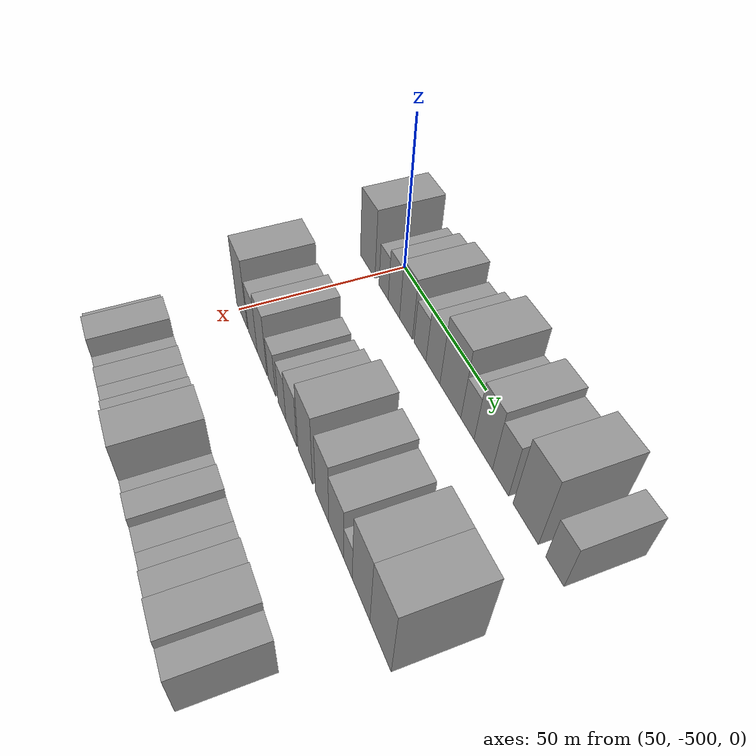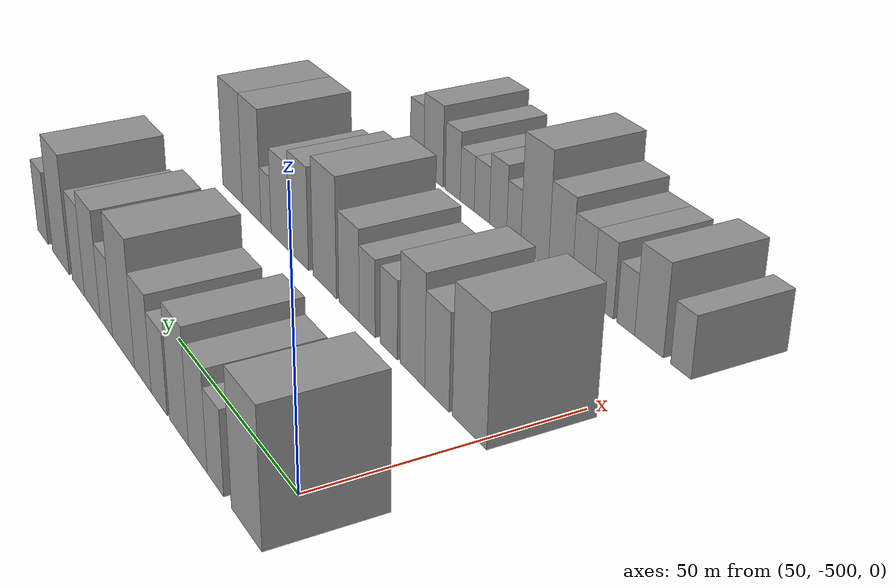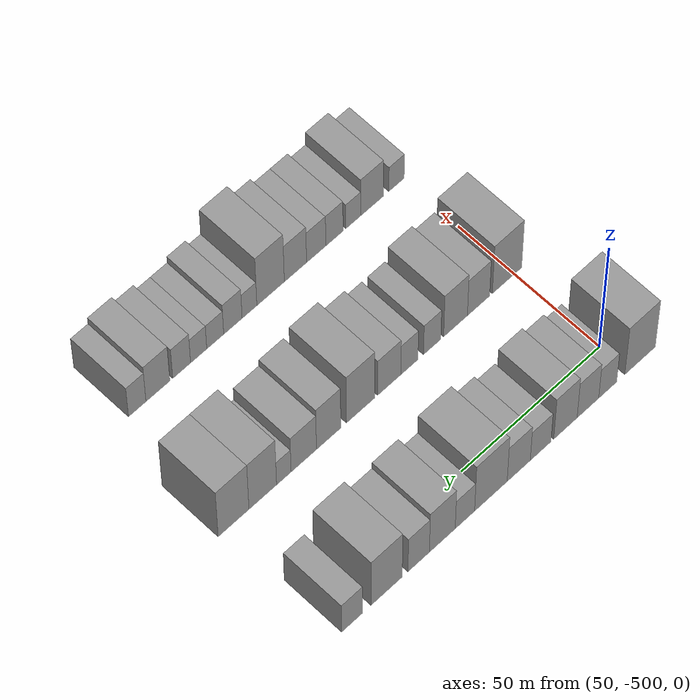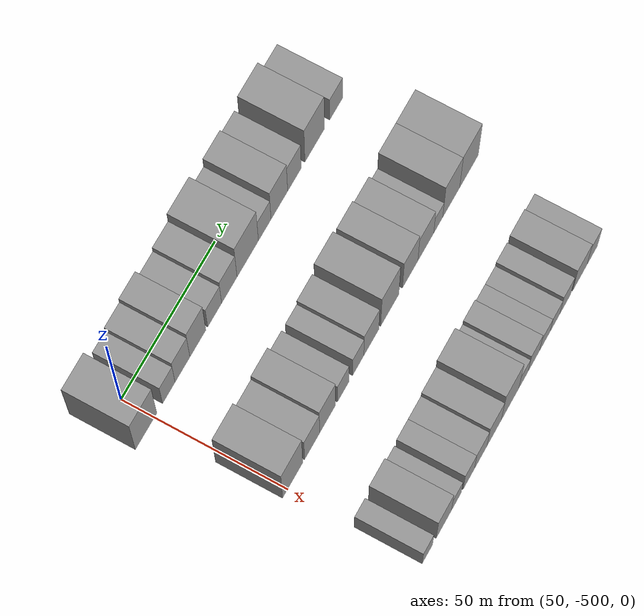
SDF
<sdf version="1.6">
 <world name="default">
  <model name="building_12">
   <static>1</static>
   <pose>50.0000 -504.3334 0 0.000000 0.000000 0.000000</pose>
   <link name="link">
    <pose>0 0 12.00 0 0 0</pose>
    <collision name="collision"><geometry><box><size>20.0000 11.2239 24.0000</size></box></geometry></collision>
    <visual name="visual">
     <cast_shadows>0</cast_shadows>
     <geometry><box><size>20.0000 11.2239 24.0000</size></box></geometry>
     <material>
      <script>
       <uri>model://grey_wall/materials/scripts</uri>
       <uri>model://grey_wall/materials/textures</uri>
       <name>vrc/grey_wall</name>
      </script>
     </material>
    </visual>
   </link>
  </model>
  <model name="building_13">
   <static>1</static>
   <pose>50.0000 -492.4218 0 0.000000 0.000000 0.000000</pose>
   <link name="link">
    <pose>0 0 7.50 0 0 0</pose>
    <collision name="collision"><geometry><box><size>20.0000 6.5992 15.0000</size></box></geometry></collision>
    <visual name="visual">
     <cast_shadows>0</cast_shadows>
     <geometry><box><size>20.0000 6.5992 15.0000</size></box></geometry>
     <material>
      <script>
       <uri>model://grey_wall/materials/scripts</uri>
       <uri>model://grey_wall/materials/textures</uri>
       <name>vrc/grey_wall</name>
      </script>
     </material>
    </visual>
   </link>
  </model>
  <model name="building_14">
   <static>1</static>
   <pose>50.0000 -485.1858 0 0.000000 0.000000 0.000000</pose>
   <link name="link">
    <pose>0 0 9.00 0 0 0</pose>
    <collision name="collision"><geometry><box><size>20.0000 7.8728 18.0000</size></box></geometry></collision>
    <visual name="visual">
     <cast_shadows>0</cast_shadows>
     <geometry><box><size>20.0000 7.8728 18.0000</size></box></geometry>
     <material>
      <script>
       <uri>model://grey_wall/materials/scripts</uri>
       <uri>model://grey_wall/materials/textures</uri>
       <name>vrc/grey_wall</name>
      </script>
     </material>
    </visual>
   </link>
  </model>
  <model name="building_15">
   <static>1</static>
   <pose>50.0000 -477.0049 0 0.000000 0.000000 0.000000</pose>
   <link name="link">
    <pose>0 0 10.50 0 0 0</pose>
    <collision name="collision"><geometry><box><size>20.0000 8.4891 21.0000</size></box></geometry></collision>
    <visual name="visual">
     <cast_shadows>0</cast_shadows>
     <geometry><box><size>20.0000 8.4891 21.0000</size></box></geometry>
     <material>
      <script>
       <uri>model://grey_wall/materials/scripts</uri>
       <uri>model://grey_wall/materials/textures</uri>
       <name>vrc/grey_wall</name>
      </script>
     </material>
    </visual>
   </link>
  </model>
  <model name="building_16">
   <static>1</static>
   <pose>50.0000 -468.0218 0 0.000000 0.000000 0.000000</pose>
   <link name="link">
    <pose>0 0 7.50 0 0 0</pose>
    <collision name="collision"><geometry><box><size>20.0000 7.4771 15.0000</size></box></geometry></collision>
    <visual name="visual">
     <cast_shadows>0</cast_shadows>
     <geometry><box><size>20.0000 7.4771 15.0000</size></box></geometry>
     <material>
      <script>
       <uri>model://grey_wall/materials/scripts</uri>
       <uri>model://grey_wall/materials/textures</uri>
       <name>vrc/grey_wall</name>
      </script>
     </material>
    </visual>
   </link>
  </model>
  <model name="building_17">
   <static>1</static>
   <pose>50.0000 -460.1328 0 0.000000 0.000000 0.000000</pose>
   <link name="link">
    <pose>0 0 9.00 0 0 0</pose>
    <collision name="collision"><geometry><box><size>20.0000 8.3009 18.0000</size></box></geometry></collision>
    <visual name="visual">
     <cast_shadows>0</cast_shadows>
     <geometry><box><size>20.0000 8.3009 18.0000</size></box></geometry>
     <material>
      <script>
       <uri>model://grey_wall/materials/scripts</uri>
       <uri>model://grey_wall/materials/textures</uri>
       <name>vrc/grey_wall</name>
      </script>
     </material>
    </visual>
   </link>
  </model>
  <model name="building_18">
   <static>1</static>
   <pose>50.0000 -450.1696 0 0.000000 0.000000 0.000000</pose>
   <link name="link">
    <pose>0 0 12.00 0 0 0</pose>
    <collision name="collision"><geometry><box><size>20.0000 11.6257 24.0000</size></box></geometry></collision>
    <visual name="visual">
     <cast_shadows>0</cast_shadows>
     <geometry><box><size>20.0000 11.6257 24.0000</size></box></geometry>
     <material>
      <script>
       <uri>model://grey_wall/materials/scripts</uri>
       <uri>model://grey_wall/materials/textures</uri>
       <name>vrc/grey_wall</name>
      </script>
     </material>
    </visual>
   </link>
  </model>
  <model name="building_19">
   <static>1</static>
   <pose>50.0000 -440.9127 0 0.000000 0.000000 0.000000</pose>
   <link name="link">
    <pose>0 0 7.50 0 0 0</pose>
    <collision name="collision"><geometry><box><size>20.0000 6.8882 15.0000</size></box></geometry></collision>
    <visual name="visual">
     <cast_shadows>0</cast_shadows>
     <geometry><box><size>20.0000 6.8882 15.0000</size></box></geometry>
     <material>
      <script>
       <uri>model://grey_wall/materials/scripts</uri>
       <uri>model://grey_wall/materials/textures</uri>
       <name>vrc/grey_wall</name>
      </script>
     </material>
    </visual>
   </link>
  </model>
  <model name="building_20">
   <static>1</static>
   <pose>50.0000 -432.9090 0 0.000000 0.000000 0.000000</pose>
   <link name="link">
    <pose>0 0 10.50 0 0 0</pose>
    <collision name="collision"><geometry><box><size>20.0000 9.1191 21.0000</size></box></geometry></collision>
    <visual name="visual">
     <cast_shadows>0</cast_shadows>
     <geometry><box><size>20.0000 9.1191 21.0000</size></box></geometry>
     <material>
      <script>
       <uri>model://grey_wall/materials/scripts</uri>
       <uri>model://grey_wall/materials/textures</uri>
       <name>vrc/grey_wall</name>
      </script>
     </material>
    </visual>
   </link>
  </model>
  <model name="building_21">
   <static>1</static>
   <pose>50.0000 -424.5883 0 0.000000 0.000000 0.000000</pose>
   <link name="link">
    <pose>0 0 9.00 0 0 0</pose>
    <collision name="collision"><geometry><box><size>20.0000 7.5224 18.0000</size></box></geometry></collision>
    <visual name="visual">
     <cast_shadows>0</cast_shadows>
     <geometry><box><size>20.0000 7.5224 18.0000</size></box></geometry>
     <material>
      <script>
       <uri>model://grey_wall/materials/scripts</uri>
       <uri>model://grey_wall/materials/textures</uri>
       <name>vrc/grey_wall</name>
      </script>
     </material>
    </visual>
   </link>
  </model>
  <model name="building_22">
   <static>1</static>
   <pose>50.0000 -413.3890 0 0.000000 0.000000 0.000000</pose>
   <link name="link">
    <pose>0 0 12.00 0 0 0</pose>
    <collision name="collision"><geometry><box><size>20.0000 10.8761 24.0000</size></box></geometry></collision>
    <visual name="visual">
     <cast_shadows>0</cast_shadows>
     <geometry><box><size>20.0000 10.8761 24.0000</size></box></geometry>
     <material>
      <script>
       <uri>model://grey_wall/materials/scripts</uri>
       <uri>model://grey_wall/materials/textures</uri>
       <name>vrc/grey_wall</name>
      </script>
     </material>
    </visual>
   </link>
  </model>
  <model name="building_23">
   <static>1</static>
   <pose>50.0000 -401.3649 0 0.000000 0.000000 0.000000</pose>
   <link name="link">
    <pose>0 0 7.50 0 0 0</pose>
    <collision name="collision"><geometry><box><size>20.0000 7.1721 15.0000</size></box></geometry></collision>
    <visual name="visual">
     <cast_shadows>0</cast_shadows>
     <geometry><box><size>20.0000 7.1721 15.0000</size></box></geometry>
     <material>
      <script>
       <uri>model://grey_wall/materials/scripts</uri>
       <uri>model://grey_wall/materials/textures</uri>
       <name>vrc/grey_wall</name>
      </script>
     </material>
    </visual>
   </link>
  </model>
  <model name="building_151">
   <static>1</static>
   <pose>90.0000 -497.3158 0 0.000000 0.000000 0.000000</pose>
   <link name="link">
    <pose>0 0 12.00 0 0 0</pose>
    <collision name="collision"><geometry><box><size>20.0000 10.7537 24.0000</size></box></geometry></collision>
    <visual name="visual">
     <cast_shadows>0</cast_shadows>
     <geometry><box><size>20.0000 10.7537 24.0000</size></box></geometry>
     <material>
      <script>
       <uri>model://grey_wall/materials/scripts</uri>
       <uri>model://grey_wall/materials/textures</uri>
       <name>vrc/grey_wall</name>
      </script>
     </material>
    </visual>
   </link>
  </model>
  <model name="building_152">
   <static>1</static>
   <pose>90.0000 -486.8825 0 0.000000 0.000000 0.000000</pose>
   <link name="link">
    <pose>0 0 9.00 0 0 0</pose>
    <collision name="collision"><geometry><box><size>20.0000 8.1130 18.0000</size></box></geometry></collision>
    <visual name="visual">
     <cast_shadows>0</cast_shadows>
     <geometry><box><size>20.0000 8.1130 18.0000</size></box></geometry>
     <material>
      <script>
       <uri>model://grey_wall/materials/scripts</uri>
       <uri>model://grey_wall/materials/textures</uri>
       <name>vrc/grey_wall</name>
      </script>
     </material>
    </visual>
   </link>
  </model>
  <model name="building_153">
   <static>1</static>
   <pose>90.0000 -478.5081 0 0.000000 0.000000 0.000000</pose>
   <link name="link">
    <pose>0 0 10.50 0 0 0</pose>
    <collision name="collision"><geometry><box><size>20.0000 8.6357 21.0000</size></box></geometry></collision>
    <visual name="visual">
     <cast_shadows>0</cast_shadows>
     <geometry><box><size>20.0000 8.6357 21.0000</size></box></geometry>
     <material>
      <script>
       <uri>model://grey_wall/materials/scripts</uri>
       <uri>model://grey_wall/materials/textures</uri>
       <name>vrc/grey_wall</name>
      </script>
     </material>
    </visual>
   </link>
  </model>
  <model name="building_154">
   <static>1</static>
   <pose>90.0000 -470.0539 0 0.000000 0.000000 0.000000</pose>
   <link name="link">
    <pose>0 0 7.50 0 0 0</pose>
    <collision name="collision"><geometry><box><size>20.0000 6.2727 15.0000</size></box></geometry></collision>
    <visual name="visual">
     <cast_shadows>0</cast_shadows>
     <geometry><box><size>20.0000 6.2727 15.0000</size></box></geometry>
     <material>
      <script>
       <uri>model://grey_wall/materials/scripts</uri>
       <uri>model://grey_wall/materials/textures</uri>
       <name>vrc/grey_wall</name>
      </script>
     </material>
    </visual>
   </link>
  </model>
  <model name="building_155">
   <static>1</static>
   <pose>90.0000 -461.8418 0 0.000000 0.000000 0.000000</pose>
   <link name="link">
    <pose>0 0 7.50 0 0 0</pose>
    <collision name="collision"><geometry><box><size>20.0000 6.1516 15.0000</size></box></geometry></collision>
    <visual name="visual">
     <cast_shadows>0</cast_shadows>
     <geometry><box><size>20.0000 6.1516 15.0000</size></box></geometry>
     <material>
      <script>
       <uri>model://grey_wall/materials/scripts</uri>
       <uri>model://grey_wall/materials/textures</uri>
       <name>vrc/grey_wall</name>
      </script>
     </material>
    </visual>
   </link>
  </model>
  <model name="building_156">
   <static>1</static>
   <pose>90.0000 -454.6146 0 0.000000 0.000000 0.000000</pose>
   <link name="link">
    <pose>0 0 9.00 0 0 0</pose>
    <collision name="collision"><geometry><box><size>20.0000 8.3029 18.0000</size></box></geometry></collision>
    <visual name="visual">
     <cast_shadows>0</cast_shadows>
     <geometry><box><size>20.0000 8.3029 18.0000</size></box></geometry>
     <material>
      <script>
       <uri>model://grey_wall/materials/scripts</uri>
       <uri>model://grey_wall/materials/textures</uri>
       <name>vrc/grey_wall</name>
      </script>
     </material>
    </visual>
   </link>
  </model>
  <model name="building_157">
   <static>1</static>
   <pose>90.0000 -444.4185 0 0.000000 0.000000 0.000000</pose>
   <link name="link">
    <pose>0 0 12.00 0 0 0</pose>
    <collision name="collision"><geometry><box><size>20.0000 10.0892 24.0000</size></box></geometry></collision>
    <visual name="visual">
     <cast_shadows>0</cast_shadows>
     <geometry><box><size>20.0000 10.0892 24.0000</size></box></geometry>
     <material>
      <script>
       <uri>model://grey_wall/materials/scripts</uri>
       <uri>model://grey_wall/materials/textures</uri>
       <name>vrc/grey_wall</name>
      </script>
     </material>
    </visual>
   </link>
  </model>
  <model name="building_158">
   <static>1</static>
   <pose>90.0000 -433.0668 0 0.000000 0.000000 0.000000</pose>
   <link name="link">
    <pose>0 0 10.50 0 0 0</pose>
    <collision name="collision"><geometry><box><size>20.0000 8.6144 21.0000</size></box></geometry></collision>
    <visual name="visual">
     <cast_shadows>0</cast_shadows>
     <geometry><box><size>20.0000 8.6144 21.0000</size></box></geometry>
     <material>
      <script>
       <uri>model://grey_wall/materials/scripts</uri>
       <uri>model://grey_wall/materials/textures</uri>
       <name>vrc/grey_wall</name>
      </script>
     </material>
    </visual>
   </link>
  </model>
  <model name="building_159">
   <static>1</static>
   <pose>90.0000 -424.3049 0 0.000000 0.000000 0.000000</pose>
   <link name="link">
    <pose>0 0 9.00 0 0 0</pose>
    <collision name="collision"><geometry><box><size>20.0000 8.9094 18.0000</size></box></geometry></collision>
    <visual name="visual">
     <cast_shadows>0</cast_shadows>
     <geometry><box><size>20.0000 8.9094 18.0000</size></box></geometry>
     <material>
      <script>
       <uri>model://grey_wall/materials/scripts</uri>
       <uri>model://grey_wall/materials/textures</uri>
       <name>vrc/grey_wall</name>
      </script>
     </material>
    </visual>
   </link>
  </model>
  <model name="building_160">
   <static>1</static>
   <pose>90.0000 -417.3159 0 0.000000 0.000000 0.000000</pose>
   <link name="link">
    <pose>0 0 6.00 0 0 0</pose>
    <collision name="collision"><geometry><box><size>20.0000 5.0687 12.0000</size></box></geometry></collision>
    <visual name="visual">
     <cast_shadows>0</cast_shadows>
     <geometry><box><size>20.0000 5.0687 12.0000</size></box></geometry>
     <material>
      <script>
       <uri>model://grey_wall/materials/scripts</uri>
       <uri>model://grey_wall/materials/textures</uri>
       <name>vrc/grey_wall</name>
      </script>
     </material>
    </visual>
   </link>
  </model>
  <model name="building_161">
   <static>1</static>
   <pose>90.0000 -409.9759 0 0.000000 0.000000 0.000000</pose>
   <link name="link">
    <pose>0 0 12.00 0 0 0</pose>
    <collision name="collision"><geometry><box><size>20.0000 9.6112 24.0000</size></box></geometry></collision>
    <visual name="visual">
     <cast_shadows>0</cast_shadows>
     <geometry><box><size>20.0000 9.6112 24.0000</size></box></geometry>
     <material>
      <script>
       <uri>model://grey_wall/materials/scripts</uri>
       <uri>model://grey_wall/materials/textures</uri>
       <name>vrc/grey_wall</name>
      </script>
     </material>
    </visual>
   </link>
  </model>
  <model name="building_162">
   <static>1</static>
   <pose>90.0000 -399.8412 0 0.000000 0.000000 0.000000</pose>
   <link name="link">
    <pose>0 0 12.00 0 0 0</pose>
    <collision name="collision"><geometry><box><size>20.0000 10.6582 24.0000</size></box></geometry></collision>
    <visual name="visual">
     <cast_shadows>0</cast_shadows>
     <geometry><box><size>20.0000 10.6582 24.0000</size></box></geometry>
     <material>
      <script>
       <uri>model://grey_wall/materials/scripts</uri>
       <uri>model://grey_wall/materials/textures</uri>
       <name>vrc/grey_wall</name>
      </script>
     </material>
    </visual>
   </link>
  </model>
  <model name="building_284">
   <static>1</static>
   <pose>130.0000 -497.6023 0 0.000000 0.000000 0.000000</pose>
   <link name="link">
    <pose>0 0 6.00 0 0 0</pose>
    <collision name="collision"><geometry><box><size>20.0000 5.6237 12.0000</size></box></geometry></collision>
    <visual name="visual">
     <cast_shadows>0</cast_shadows>
     <geometry><box><size>20.0000 5.6237 12.0000</size></box></geometry>
     <material>
      <script>
       <uri>model://grey_wall/materials/scripts</uri>
       <uri>model://grey_wall/materials/textures</uri>
       <name>vrc/grey_wall</name>
      </script>
     </material>
    </visual>
   </link>
  </model>
  <model name="building_285">
   <static>1</static>
   <pose>130.0000 -488.6462 0 0.000000 0.000000 0.000000</pose>
   <link name="link">
    <pose>0 0 9.00 0 0 0</pose>
    <collision name="collision"><geometry><box><size>20.0000 8.2884 18.0000</size></box></geometry></collision>
    <visual name="visual">
     <cast_shadows>0</cast_shadows>
     <geometry><box><size>20.0000 8.2884 18.0000</size></box></geometry>
     <material>
      <script>
       <uri>model://grey_wall/materials/scripts</uri>
       <uri>model://grey_wall/materials/textures</uri>
       <name>vrc/grey_wall</name>
      </script>
     </material>
    </visual>
   </link>
  </model>
  <model name="building_286">
   <static>1</static>
   <pose>130.0000 -481.7968 0 0.000000 0.000000 0.000000</pose>
   <link name="link">
    <pose>0 0 6.00 0 0 0</pose>
    <collision name="collision"><geometry><box><size>20.0000 5.4103 12.0000</size></box></geometry></collision>
    <visual name="visual">
     <cast_shadows>0</cast_shadows>
     <geometry><box><size>20.0000 5.4103 12.0000</size></box></geometry>
     <material>
      <script>
       <uri>model://grey_wall/materials/scripts</uri>
       <uri>model://grey_wall/materials/textures</uri>
       <name>vrc/grey_wall</name>
      </script>
     </material>
    </visual>
   </link>
  </model>
  <model name="building_287">
   <static>1</static>
   <pose>130.0000 -474.9607 0 0.000000 0.000000 0.000000</pose>
   <link name="link">
    <pose>0 0 7.50 0 0 0</pose>
    <collision name="collision"><geometry><box><size>20.0000 6.2620 15.0000</size></box></geometry></collision>
    <visual name="visual">
     <cast_shadows>0</cast_shadows>
     <geometry><box><size>20.0000 6.2620 15.0000</size></box></geometry>
     <material>
      <script>
       <uri>model://grey_wall/materials/scripts</uri>
       <uri>model://grey_wall/materials/textures</uri>
       <name>vrc/grey_wall</name>
      </script>
     </material>
    </visual>
   </link>
  </model>
  <model name="building_288">
   <static>1</static>
   <pose>130.0000 -468.3507 0 0.000000 0.000000 0.000000</pose>
   <link name="link">
    <pose>0 0 7.50 0 0 0</pose>
    <collision name="collision"><geometry><box><size>20.0000 6.9579 15.0000</size></box></geometry></collision>
    <visual name="visual">
     <cast_shadows>0</cast_shadows>
     <geometry><box><size>20.0000 6.9579 15.0000</size></box></geometry>
     <material>
      <script>
       <uri>model://grey_wall/materials/scripts</uri>
       <uri>model://grey_wall/materials/textures</uri>
       <name>vrc/grey_wall</name>
      </script>
     </material>
    </visual>
   </link>
  </model>
  <model name="building_289">
   <static>1</static>
   <pose>130.0000 -460.8813 0 0.000000 0.000000 0.000000</pose>
   <link name="link">
    <pose>0 0 9.00 0 0 0</pose>
    <collision name="collision"><geometry><box><size>20.0000 7.9809 18.0000</size></box></geometry></collision>
    <visual name="visual">
     <cast_shadows>0</cast_shadows>
     <geometry><box><size>20.0000 7.9809 18.0000</size></box></geometry>
     <material>
      <script>
       <uri>model://grey_wall/materials/scripts</uri>
       <uri>model://grey_wall/materials/textures</uri>
       <name>vrc/grey_wall</name>
      </script>
     </material>
    </visual>
   </link>
  </model>
  <model name="building_290">
   <static>1</static>
   <pose>130.0000 -451.9796 0 0.000000 0.000000 0.000000</pose>
   <link name="link">
    <pose>0 0 12.00 0 0 0</pose>
    <collision name="collision"><geometry><box><size>20.0000 9.8225 24.0000</size></box></geometry></collision>
    <visual name="visual">
     <cast_shadows>0</cast_shadows>
     <geometry><box><size>20.0000 9.8225 24.0000</size></box></geometry>
     <material>
      <script>
       <uri>model://grey_wall/materials/scripts</uri>
       <uri>model://grey_wall/materials/textures</uri>
       <name>vrc/grey_wall</name>
      </script>
     </material>
    </visual>
   </link>
  </model>
  <model name="building_291">
   <static>1</static>
   <pose>130.0000 -444.4454 0 0.000000 0.000000 0.000000</pose>
   <link name="link">
    <pose>0 0 6.00 0 0 0</pose>
    <collision name="collision"><geometry><box><size>20.0000 5.2460 12.0000</size></box></geometry></collision>
    <visual name="visual">
     <cast_shadows>0</cast_shadows>
     <geometry><box><size>20.0000 5.2460 12.0000</size></box></geometry>
     <material>
      <script>
       <uri>model://grey_wall/materials/scripts</uri>
       <uri>model://grey_wall/materials/textures</uri>
       <name>vrc/grey_wall</name>
      </script>
     </material>
    </visual>
   </link>
  </model>
  <model name="building_292">
   <static>1</static>
   <pose>130.0000 -438.5631 0 0.000000 0.000000 0.000000</pose>
   <link name="link">
    <pose>0 0 7.50 0 0 0</pose>
    <collision name="collision"><geometry><box><size>20.0000 6.5186 15.0000</size></box></geometry></collision>
    <visual name="visual">
     <cast_shadows>0</cast_shadows>
     <geometry><box><size>20.0000 6.5186 15.0000</size></box></geometry>
     <material>
      <script>
       <uri>model://grey_wall/materials/scripts</uri>
       <uri>model://grey_wall/materials/textures</uri>
       <name>vrc/grey_wall</name>
      </script>
     </material>
    </visual>
   </link>
  </model>
  <model name="building_293">
   <static>1</static>
   <pose>130.0000 -432.3129 0 0.000000 0.000000 0.000000</pose>
   <link name="link">
    <pose>0 0 6.00 0 0 0</pose>
    <collision name="collision"><geometry><box><size>20.0000 5.9817 12.0000</size></box></geometry></collision>
    <visual name="visual">
     <cast_shadows>0</cast_shadows>
     <geometry><box><size>20.0000 5.9817 12.0000</size></box></geometry>
     <material>
      <script>
       <uri>model://grey_wall/materials/scripts</uri>
       <uri>model://grey_wall/materials/textures</uri>
       <name>vrc/grey_wall</name>
      </script>
     </material>
    </visual>
   </link>
  </model>
  <model name="building_294">
   <static>1</static>
   <pose>130.0000 -426.4799 0 0.000000 0.000000 0.000000</pose>
   <link name="link">
    <pose>0 0 6.00 0 0 0</pose>
    <collision name="collision"><geometry><box><size>20.0000 5.6844 12.0000</size></box></geometry></collision>
    <visual name="visual">
     <cast_shadows>0</cast_shadows>
     <geometry><box><size>20.0000 5.6844 12.0000</size></box></geometry>
     <material>
      <script>
       <uri>model://grey_wall/materials/scripts</uri>
       <uri>model://grey_wall/materials/textures</uri>
       <name>vrc/grey_wall</name>
      </script>
     </material>
    </visual>
   </link>
  </model>
  <model name="building_295">
   <static>1</static>
   <pose>130.0000 -420.5104 0 0.000000 0.000000 0.000000</pose>
   <link name="link">
    <pose>0 0 7.50 0 0 0</pose>
    <collision name="collision"><geometry><box><size>20.0000 6.2546 15.0000</size></box></geometry></collision>
    <visual name="visual">
     <cast_shadows>0</cast_shadows>
     <geometry><box><size>20.0000 6.2546 15.0000</size></box></geometry>
     <material>
      <script>
       <uri>model://grey_wall/materials/scripts</uri>
       <uri>model://grey_wall/materials/textures</uri>
       <name>vrc/grey_wall</name>
      </script>
     </material>
    </visual>
   </link>
  </model>
  <model name="building_296">
   <static>1</static>
   <pose>130.0000 -412.2121 0 0.000000 0.000000 0.000000</pose>
   <link name="link">
    <pose>0 0 9.00 0 0 0</pose>
    <collision name="collision"><geometry><box><size>20.0000 8.3421 18.0000</size></box></geometry></collision>
    <visual name="visual">
     <cast_shadows>0</cast_shadows>
     <geometry><box><size>20.0000 8.3421 18.0000</size></box></geometry>
     <material>
      <script>
       <uri>model://grey_wall/materials/scripts</uri>
       <uri>model://grey_wall/materials/textures</uri>
       <name>vrc/grey_wall</name>
      </script>
     </material>
    </visual>
   </link>
  </model>
  <model name="building_297">
   <static>1</static>
   <pose>130.0000 -405.0087 0 0.000000 0.000000 0.000000</pose>
   <link name="link">
    <pose>0 0 7.50 0 0 0</pose>
    <collision name="collision"><geometry><box><size>20.0000 6.0648 15.0000</size></box></geometry></collision>
    <visual name="visual">
     <cast_shadows>0</cast_shadows>
     <geometry><box><size>20.0000 6.0648 15.0000</size></box></geometry>
     <material>
      <script>
       <uri>model://grey_wall/materials/scripts</uri>
       <uri>model://grey_wall/materials/textures</uri>
       <name>vrc/grey_wall</name>
      </script>
     </material>
    </visual>
   </link>
  </model>
 </world>
</sdf>
